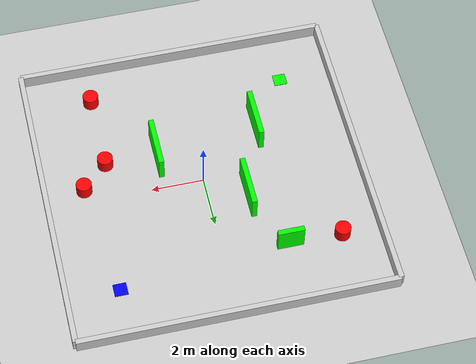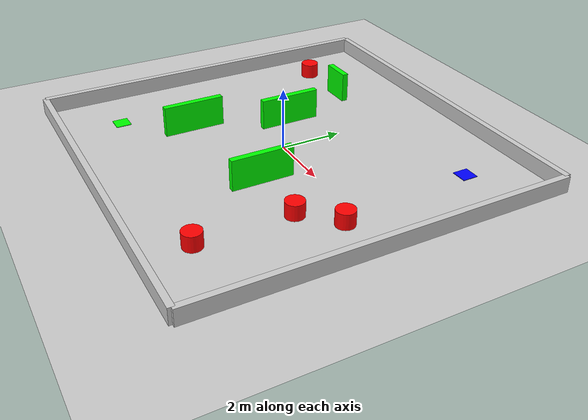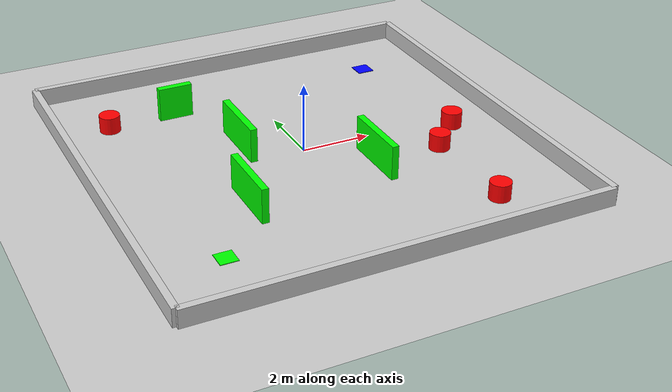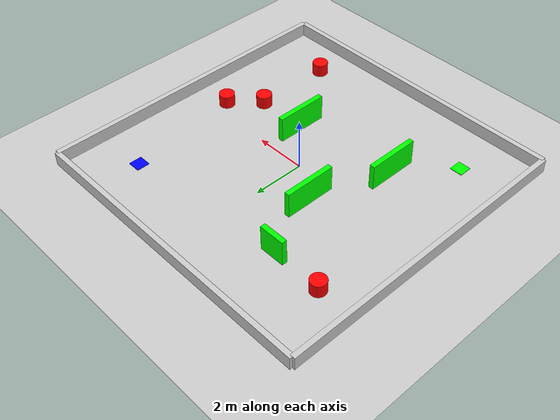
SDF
<?xml version="1.0"?>
<sdf version="1.6">
<world name="random_world">

  <include>
    <uri>model://ground_plane</uri>
  </include>

  <include>
    <uri>model://sun</uri>
  </include>

  <model name="wall_0">
    <static>true</static>
    <link name="wall_link_0">
      <pose>0 6 0 0 0 0</pose>
      <collision name="collision">
        <geometry>
          <box><size>12 0.2 1</size></box>
        </geometry>
      </collision>
      <visual name="visual">
        <geometry>
          <box><size>12 0.2 1</size></box>
        </geometry>
        <material><ambient>0.8 0.8 0.8 1</ambient></material>
      </visual>
    </link>
  </model>

  <model name="wall_1">
    <static>true</static>
    <link name="wall_link_1">
      <pose>0 -6 0 0 0 0</pose>
      <collision name="collision">
        <geometry>
          <box><size>12 0.2 1</size></box>
        </geometry>
      </collision>
      <visual name="visual">
        <geometry>
          <box><size>12 0.2 1</size></box>
        </geometry>
        <material><ambient>0.8 0.8 0.8 1</ambient></material>
      </visual>
    </link>
  </model>

  <model name="wall_2">
    <static>true</static>
    <link name="wall_link_2">
      <pose>6 0 0 0 0 0</pose>
      <collision name="collision">
        <geometry>
          <box><size>0.2 12 1</size></box>
        </geometry>
      </collision>
      <visual name="visual">
        <geometry>
          <box><size>0.2 12 1</size></box>
        </geometry>
        <material><ambient>0.8 0.8 0.8 1</ambient></material>
      </visual>
    </link>
  </model>

  <model name="wall_3">
    <static>true</static>
    <link name="wall_link_3">
      <pose>-6 0 0 0 0 0</pose>
      <collision name="collision">
        <geometry>
          <box><size>0.2 12 1</size></box>
        </geometry>
      </collision>
      <visual name="visual">
        <geometry>
          <box><size>0.2 12 1</size></box>
        </geometry>
        <material><ambient>0.8 0.8 0.8 1</ambient></material>
      </visual>
    </link>
  </model>

  <model name="obstacle_0">
    <static>true</static>
    <link name="obs_link_0">
      <pose>-4.5 3.5 0.25 0 0 0</pose>
      <collision name="collision">
        <geometry>
          <cylinder><radius>0.3</radius><length>0.5</length></cylinder>
        </geometry>
      </collision>
      <visual name="visual">
        <geometry>
          <cylinder><radius>0.3</radius><length>0.5</length></cylinder>
        </geometry>
        <material><ambient>1 0 0 1</ambient></material>
      </visual>
    </link>
  </model>

  <model name="obstacle_1">
    <static>true</static>
    <link name="obs_link_1">
      <pose>3.5 -1.5 0.25 0 0 0</pose>
      <collision name="collision">
        <geometry>
          <cylinder><radius>0.3</radius><length>0.5</length></cylinder>
        </geometry>
      </collision>
      <visual name="visual">
        <geometry>
          <cylinder><radius>0.3</radius><length>0.5</length></cylinder>
        </geometry>
        <material><ambient>1 0 0 1</ambient></material>
      </visual>
    </link>
  </model>

  <model name="obstacle_2">
    <static>true</static>
    <link name="obs_link_2">
      <pose>3.5 -4.5 0.25 0 0 0</pose>
      <collision name="collision">
        <geometry>
          <cylinder><radius>0.3</radius><length>0.5</length></cylinder>
        </geometry>
      </collision>
      <visual name="visual">
        <geometry>
          <cylinder><radius>0.3</radius><length>0.5</length></cylinder>
        </geometry>
        <material><ambient>1 0 0 1</ambient></material>
      </visual>
    </link>
  </model>

  <model name="obstacle_3">
    <static>true</static>
    <link name="obs_link_3">
      <pose>4.5 -0.5 0.25 0 0 0</pose>
      <collision name="collision">
        <geometry>
          <cylinder><radius>0.3</radius><length>0.5</length></cylinder>
        </geometry>
      </collision>
      <visual name="visual">
        <geometry>
          <cylinder><radius>0.3</radius><length>0.5</length></cylinder>
        </geometry>
        <material><ambient>1 0 0 1</ambient></material>
      </visual>
    </link>
  </model>

  <model name="rand_wall_0">
    <static>true</static>
    <link name="rand_wall_link_0">
      <pose>-2.5 3.5 0.5 0 0 0</pose>
      <collision name="collision">
        <geometry>
          <box><size>1.0 0.2 1</size></box>
        </geometry>
      </collision>
      <visual name="visual">
        <geometry>
          <box><size>1.0 0.2 1</size></box>
        </geometry>
        <material><ambient>0 1 0 1</ambient></material>
      </visual>
    </link>
  </model>

  <model name="rand_wall_1">
    <static>true</static>
    <link name="rand_wall_link_1">
      <pose>1.5 -1.5 0.5 0 0 1.57</pose>
      <collision name="collision">
        <geometry>
          <box><size>2.0 0.2 1</size></box>
        </geometry>
      </collision>
      <visual name="visual">
        <geometry>
          <box><size>2.0 0.2 1</size></box>
        </geometry>
        <material><ambient>0 1 0 1</ambient></material>
      </visual>
    </link>
  </model>

  <model name="rand_wall_2">
    <static>true</static>
    <link name="rand_wall_link_2">
      <pose>-2.5 -2.0 0.5 0 0 1.57</pose>
      <collision name="collision">
        <geometry>
          <box><size>2.0 0.2 1</size></box>
        </geometry>
      </collision>
      <visual name="visual">
        <geometry>
          <box><size>2.0 0.2 1</size></box>
        </geometry>
        <material><ambient>0 1 0 1</ambient></material>
      </visual>
    </link>
  </model>

  <model name="rand_wall_3">
    <static>true</static>
    <link name="rand_wall_link_3">
      <pose>-1.5 1.0 0.5 0 0 1.57</pose>
      <collision name="collision">
        <geometry>
          <box><size>2.0 0.2 1</size></box>
        </geometry>
      </collision>
      <visual name="visual">
        <geometry>
          <box><size>2.0 0.2 1</size></box>
        </geometry>
        <material><ambient>0 1 0 1</ambient></material>
      </visual>
    </link>
  </model>

  <model name="start_point">
    <static>true</static>
    <link name="start_link">
      <pose>-4 -4 0.01 0 0 0</pose>
      <visual name="visual">
        <geometry>
          <box><size>0.5 0.5 0.02</size></box>
        </geometry>
        <material><ambient>0 1 0 1</ambient></material>
      </visual>
    </link>
  </model>

  <model name="finish_point">
    <static>true</static>
    <link name="finish_link">
      <pose>4 4 0.01 0 0 0</pose>
      <visual name="visual">
        <geometry>
          <box><size>0.5 0.5 0.02</size></box>
        </geometry>
        <material><ambient>0 0 1 1</ambient></material>
      </visual>
    </link>
  </model>

</world>
</sdf>
